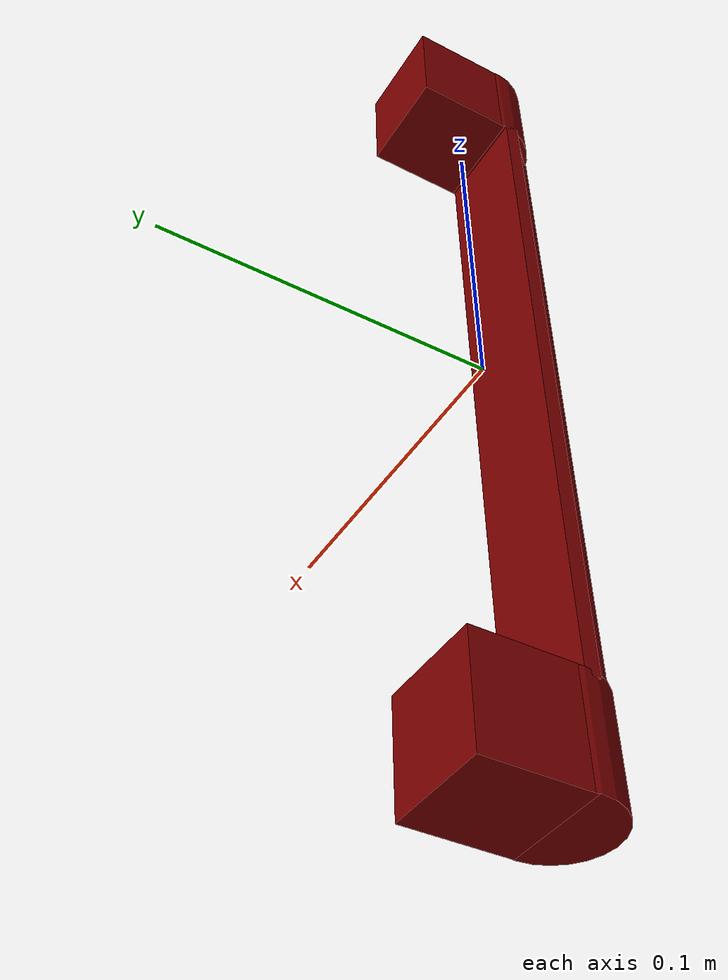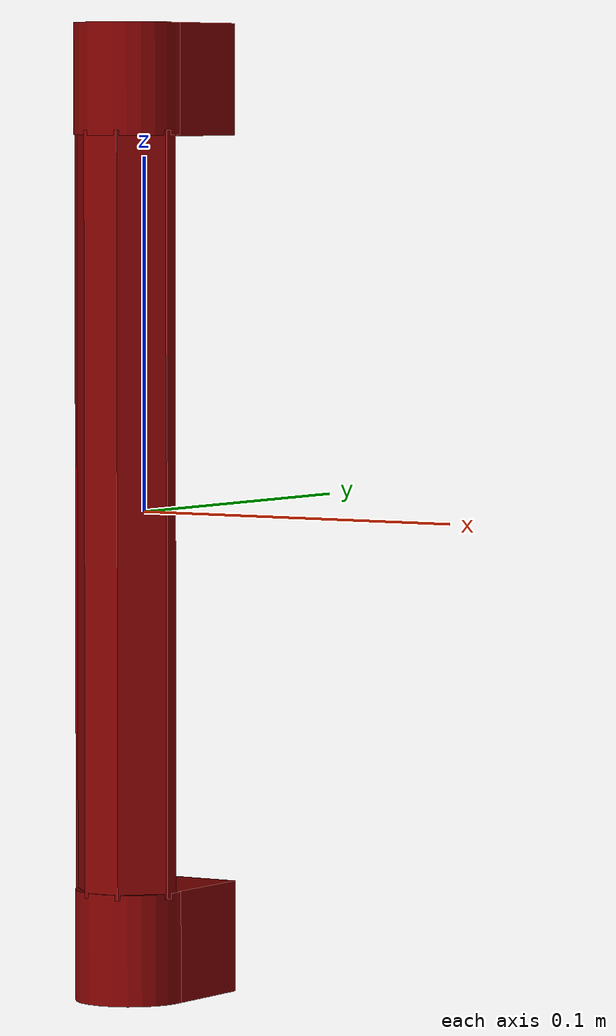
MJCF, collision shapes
<?xml version='1.0' encoding='UTF-8'?>
<mujoco model="model">
  <option timestep="0.002" gravity="0.0 0.0 -9.81"/>
  <compiler angle="radian"/>
  <asset>
    <mesh file="visuals/CabinetHandle004.obj" name="CabinetHandle004_vis"/>
    <texture file="visuals/T_BC001.png" name="tex" type="2d"/>
    <material name="mat" rgba="1 1 1 1.0" texture="tex" shininess="0.5" specular="0.3103448502657381"/>
  </asset>
  <default>
    <default class="visual">
      <geom conaffinity="0" contype="0" group="1" type="mesh"/>
    </default>
    <default class="collision">
      <geom group="0" rgba="0.5 0 0 0.5" density="1.0" solref="0.004 1" solimp="0.998 0.998 0.001"/>
    </default>
    <default class="spawn">
      <geom group="0" rgba="1 1 1 0.5" contype="0" conaffinity="0"/>
      <site group="0" rgba="1 1 1 0.5"/>
    </default>
    <default class="region">
      <geom group="1" conaffinity="0" contype="0" rgba="0 1 0 0" mass="0"/>
    </default>
  </default>
  <worldbody>
    <body>
      <body name="object">
        <geom mesh="CabinetHandle004_vis" type="mesh" solimp="0.998 0.998 0.001" solref="0.001 1" friction="0.95 0.3 0.1" class="visual" material="mat"/>
        <geom type="cylinder" pos="4.047428956255317e-05 -0.007405722513794899 0.12205032259225845" size="0.01572316512465477 0.01572316512465477" quat="1.0 0.0 0.0 0.0" class="collision"/>
        <geom type="cylinder" pos="4.047428956255317e-05 -0.007405722513794899 -0.12186028808355331" size="0.01572316512465477 0.01572316512465477" quat="1.0 0.0 0.0 0.0" class="collision"/>
        <geom type="box" pos="0.0 -0.00988430343568325 0.0" size="0.015406502410769463 0.002204081742092967 0.10764431953430176" quat="1.0 0.0 0.0 0.0" class="collision"/>
        <geom type="box" pos="0.0 -0.017093025147914886 0.0" size="0.005467150826007128 0.0053257932886481285 0.1076442152261734" quat="1.0 0.0 0.0 0.0" class="collision"/>
        <geom type="box" pos="-0.007588930428028107 -0.015140317380428314 0.0" size="0.003139797830954194 0.007027383893728256 0.10764431953430176" quat="0.9290124773979187 0.0 0.0 0.3700483739376068" class="collision"/>
        <geom type="box" pos="0.00796172209084034 -0.015140317380428314 0.0" size="0.003139798529446125 0.007027383893728256 0.10764431953430176" quat="-1.912557667793635e-09 -0.37004828453063965 -0.9290125370025635 -2.0882326623450354e-07" class="collision"/>
        <geom type="box" pos="0.0 0.008134550414979458 0.12192091345787048" size="0.015477919951081276 0.015077748335897923 0.01583782210946083" quat="1.0 0.0 0.0 0.0" class="collision"/>
        <geom type="box" pos="0.0 0.008134550414979458 -0.12181602418422699" size="0.015477919951081276 0.015077748335897923 0.01583782210946083" quat="1.0 0.0 0.0 0.0" class="collision"/>
        <geom class="region" name="reg_main" type="box" pos="-2.3283064365386963e-10 0.0 0.0" size="0.01624702925235033 0.023870499640703202 0.13822099363803864"/>
      </body>
    </body>
  </worldbody>
  <actuator/>
</mujoco>
